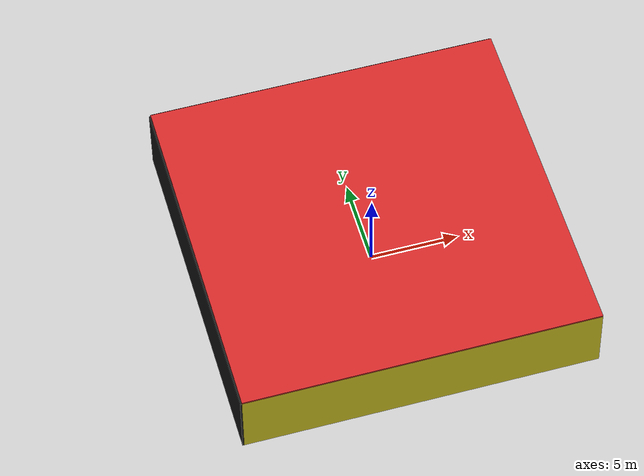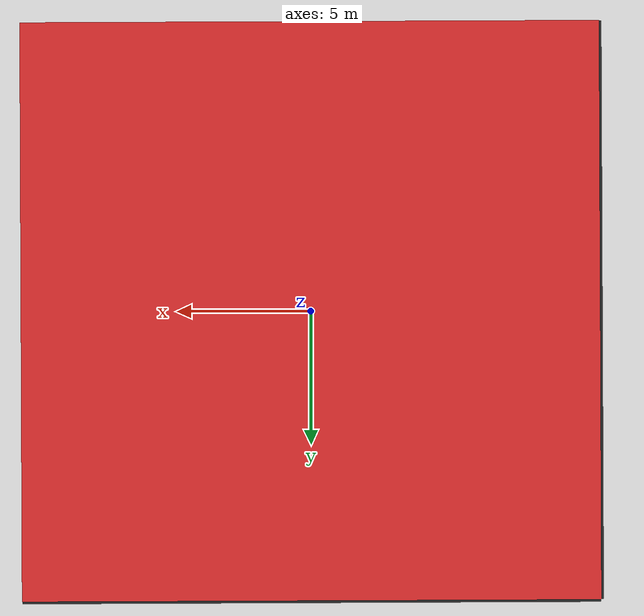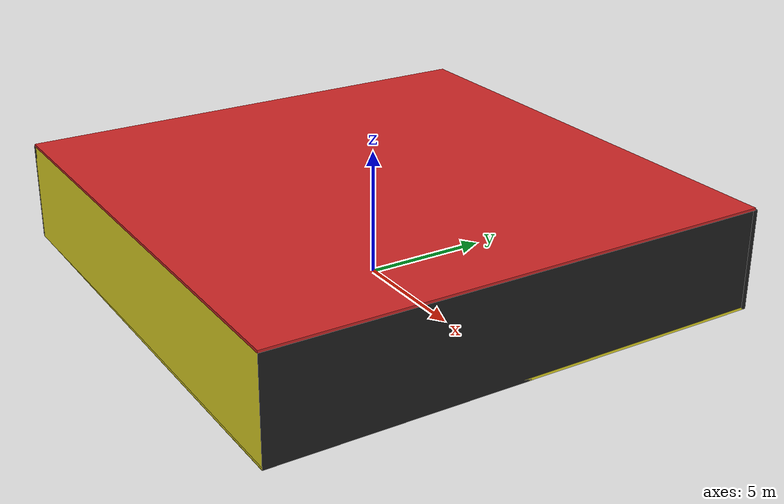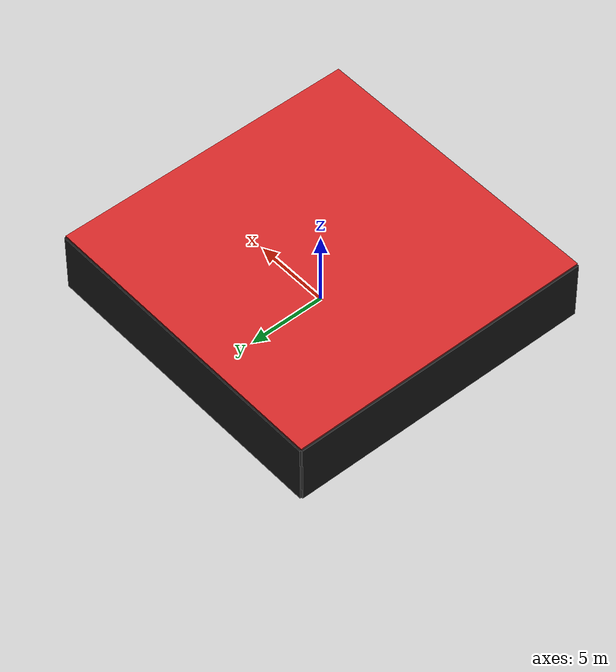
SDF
<sdf version="1.4">
 <world name="default">
  <physics type="ode">
   <max_step_size>0.001</max_step_size>
   <real_time_factor>1</real_time_factor>
   <real_time_update_rate>1000</real_time_update_rate>
   <gravity>0 0 -9.8</gravity>
  </physics>
  <scene><ambient>0.4 0.4 0.4 1</ambient><background>0.7 0.7 0.7 1</background><shadows>1</shadows></scene>
  <model name="Surrounding">
   <static>1</static>
   <link name="Ceiling">
    <collision name="Ceiling_Collision"><geometry><box><size>20 20 0.1</size></box></geometry></collision>
    <visual name="Ceiling_Visual">
     <geometry><box><size>20 20 0.1</size></box></geometry>
     <material>
      <script><uri>file://media/materials/scripts/gazebo.material</uri><name>Gazebo/RedBright</name></script>
     </material>
    </visual>
    <pose>0 0 4.05 0 0 0</pose>
   </link>
   <link name="Wall_South">
    <collision name="Wall_South_Collision">
     <geometry><box><size>20 0 4</size></box></geometry>
     <pose>0 0 2 0 -0 0</pose>
    </collision>
    <visual name="Wall_South_Visual">
     <pose>0 0 2 0 -0 0</pose>
     <geometry><box><size>20 0 4</size></box></geometry>
     <material>
      <script><uri>file://media/materials/scripts/gazebo.material</uri><name>Gazebo/Yellow</name></script>
     </material>
    </visual>
    <velocity_decay><linear>0</linear><angular>0</angular></velocity_decay>
    <pose>0 -10 0 0 -0 0</pose>
   </link>
   <link name="Wall_East">
    <collision name="Wall_21_Collision">
     <geometry><box><size>20 0 4</size></box></geometry>
     <pose>0 0 2 0 -0 0</pose>
    </collision>
    <visual name="Wall_21_Visual">
     <pose>0 0 2 0 -0 0</pose>
     <geometry><box><size>20 0 4</size></box></geometry>
     <material>
      <script><uri>file://media/materials/scripts/gazebo.material</uri><name>Gazebo/Black</name></script>
     </material>
    </visual>
    <velocity_decay><linear>0</linear><angular>0</angular></velocity_decay>
    <pose>10 0 0 0 -0 1.5708</pose>
   </link>
   <link name="Wall_North">
    <collision name="Wall_22_Collision">
     <geometry><box><size>20 0.2 4</size></box></geometry>
     <pose>0 0 2 0 -0 0</pose>
    </collision>
    <visual name="Wall_22_Visual">
     <pose>0 0 2 0 -0 0</pose>
     <geometry><box><size>20 0.2 4</size></box></geometry>
     <material>
      <script><uri>file://media/materials/scripts/gazebo.material</uri><name>Gazebo/FlatBlack</name></script>
     </material>
    </visual>
    <velocity_decay><linear>0</linear><angular>0</angular></velocity_decay>
    <pose>0 10 0 0 -0 0</pose>
   </link>
   <link name="Wall_West">
    <collision name="Wall_23_Collision">
     <geometry><box><size>20 0.2 4</size></box></geometry>
     <pose>0 0 2 0 -0 0</pose>
    </collision>
    <visual name="Wall_23_Visual">
     <pose>0 0 2 0 -0 0</pose>
     <geometry><box><size>20 0.2 4</size></box></geometry>
     <material>
      <script><uri>file://media/materials/scripts/gazebo.material</uri><name>Gazebo/Black</name></script>
     </material>
    </visual>
    <velocity_decay><linear>0</linear><angular>0</angular></velocity_decay>
    <pose>-10 0 0 0 0 -1.5708</pose>
   </link>
   <link name="Ground_link">
    <collision name="collision">
     <pose>0 0 .05 0 -0 0</pose>
     <geometry><box><size>20 20 0.1</size></box></geometry>
    </collision>
    <visual name="visual">
     <pose>0 0 .05 0 -0 0</pose>
     <geometry><box><size>20 20 0.1</size></box></geometry>
     <material>
      <script><uri>file://media/materials/scripts/gazebo.material</uri><name>Gazebo/Yellow</name></script>
     </material>
    </visual>
   </link>
   <static>1</static>
  </model>
  <spherical_coordinates>
   <surface_model>EARTH_WGS84</surface_model>
   <latitude_deg>0</latitude_deg>
   <longitude_deg>0</longitude_deg>
   <elevation>0</elevation>
   <heading_deg>0</heading_deg>
  </spherical_coordinates>
  <light name="lightball_0" type="diffuse">
   <diffuse>0.8 0.8 0.8 1</diffuse>
   <specular>0.2 0.2 0.2 1</specular>
   <attenuation>
    <range>100</range>
    <constant>0.7</constant>
    <linear>0.01</linear>
    <quadratic>0.001</quadratic>
   </attenuation>
   <direction>-0.5 0.1 -0.9</direction>
   <pose>1.01677393817 -3.67400231333 0.966563235538 0 0 0</pose>
  </light>
  <light name="lightball_1" type="diffuse">
   <diffuse>0.8 0.8 0.8 1</diffuse>
   <specular>0.2 0.2 0.2 1</specular>
   <attenuation>
    <range>100</range>
    <constant>0.7</constant>
    <linear>0.01</linear>
    <quadratic>0.001</quadratic>
   </attenuation>
   <direction>-0.5 0.1 -0.9</direction>
   <pose>5.03482294433 -5.28095062366 2.32448323927 0 0 0</pose>
  </light>
  <light name="lightball_2" type="diffuse">
   <diffuse>0.8 0.8 0.8 1</diffuse>
   <specular>0.2 0.2 0.2 1</specular>
   <attenuation>
    <range>100</range>
    <constant>0.7</constant>
    <linear>0.01</linear>
    <quadratic>0.001</quadratic>
   </attenuation>
   <direction>-0.5 0.1 -0.9</direction>
   <pose>-6.86778840813 8.20407037142 2.27780989062 0 0 0</pose>
  </light>
  <light name="lightball_3" type="diffuse">
   <diffuse>0.8 0.8 0.8 1</diffuse>
   <specular>0.2 0.2 0.2 1</specular>
   <attenuation>
    <range>100</range>
    <constant>0.7</constant>
    <linear>0.01</linear>
    <quadratic>0.001</quadratic>
   </attenuation>
   <direction>-0.5 0.1 -0.9</direction>
   <pose>4.32991357351 -6.79291054489 2.94652713273 0 0 0</pose>
  </light>
  <light name="lightball_4" type="diffuse">
   <diffuse>0.8 0.8 0.8 1</diffuse>
   <specular>0.2 0.2 0.2 1</specular>
   <attenuation>
    <range>100</range>
    <constant>0.7</constant>
    <linear>0.01</linear>
    <quadratic>0.001</quadratic>
   </attenuation>
   <direction>-0.5 0.1 -0.9</direction>
   <pose>9.38405797979 -0.181685380242 0.916686547769 0 0 0</pose>
  </light>
  <light name="lightball_5" type="diffuse">
   <diffuse>0.8 0.8 0.8 1</diffuse>
   <specular>0.2 0.2 0.2 1</specular>
   <attenuation>
    <range>100</range>
    <constant>0.7</constant>
    <linear>0.01</linear>
    <quadratic>0.001</quadratic>
   </attenuation>
   <direction>-0.5 0.1 -0.9</direction>
   <pose>-4.72403720839 4.98183603052 3.84375951092 0 0 0</pose>
  </light>
  <light name="lightball_6" type="diffuse">
   <diffuse>0.8 0.8 0.8 1</diffuse>
   <specular>0.2 0.2 0.2 1</specular>
   <attenuation>
    <range>100</range>
    <constant>0.7</constant>
    <linear>0.01</linear>
    <quadratic>0.001</quadratic>
   </attenuation>
   <direction>-0.5 0.1 -0.9</direction>
   <pose>3.97724368767 -7.8562949018 3.33719339256 0 0 0</pose>
  </light>
  <light name="lightball_7" type="diffuse">
   <diffuse>0.8 0.8 0.8 1</diffuse>
   <specular>0.2 0.2 0.2 1</specular>
   <attenuation>
    <range>100</range>
    <constant>0.7</constant>
    <linear>0.01</linear>
    <quadratic>0.001</quadratic>
   </attenuation>
   <direction>-0.5 0.1 -0.9</direction>
   <pose>3.84846723182 9.00798738858 3.79778886358 0 0 0</pose>
  </light>
  <light name="lightball_8" type="diffuse">
   <diffuse>0.8 0.8 0.8 1</diffuse>
   <specular>0.2 0.2 0.2 1</specular>
   <attenuation>
    <range>100</range>
    <constant>0.7</constant>
    <linear>0.01</linear>
    <quadratic>0.001</quadratic>
   </attenuation>
   <direction>-0.5 0.1 -0.9</direction>
   <pose>-7.56818378934 -8.87352429367 3.62423037432 0 0 0</pose>
  </light>
  <light name="lightball_9" type="diffuse">
   <diffuse>0.8 0.8 0.8 1</diffuse>
   <specular>0.2 0.2 0.2 1</specular>
   <attenuation>
    <range>100</range>
    <constant>0.7</constant>
    <linear>0.01</linear>
    <quadratic>0.001</quadratic>
   </attenuation>
   <direction>-0.5 0.1 -0.9</direction>
   <pose>-2.05416240766 -4.27063877695 1.80414233689 0 0 0</pose>
  </light>
  <light name="lightball_10" type="diffuse">
   <diffuse>0.8 0.8 0.8 1</diffuse>
   <specular>0.2 0.2 0.2 1</specular>
   <attenuation>
    <range>100</range>
    <constant>0.7</constant>
    <linear>0.01</linear>
    <quadratic>0.001</quadratic>
   </attenuation>
   <direction>-0.5 0.1 -0.9</direction>
   <pose>5.19653545443 -5.29850083202 3.07111478725 0 0 0</pose>
  </light>
  <light name="lightball_11" type="diffuse">
   <diffuse>0.8 0.8 0.8 1</diffuse>
   <specular>0.2 0.2 0.2 1</specular>
   <attenuation>
    <range>100</range>
    <constant>0.7</constant>
    <linear>0.01</linear>
    <quadratic>0.001</quadratic>
   </attenuation>
   <direction>-0.5 0.1 -0.9</direction>
   <pose>-5.28375511084 8.35823516446 2.17735060924 0 0 0</pose>
  </light>
  <light name="lightball_12" type="diffuse">
   <diffuse>0.8 0.8 0.8 1</diffuse>
   <specular>0.2 0.2 0.2 1</specular>
   <attenuation>
    <range>100</range>
    <constant>0.7</constant>
    <linear>0.01</linear>
    <quadratic>0.001</quadratic>
   </attenuation>
   <direction>-0.5 0.1 -0.9</direction>
   <pose>7.95774376028 -9.63300813809 1.6057008976 0 0 0</pose>
  </light>
  <light name="lightball_13" type="diffuse">
   <diffuse>0.8 0.8 0.8 1</diffuse>
   <specular>0.2 0.2 0.2 1</specular>
   <attenuation>
    <range>100</range>
    <constant>0.7</constant>
    <linear>0.01</linear>
    <quadratic>0.001</quadratic>
   </attenuation>
   <direction>-0.5 0.1 -0.9</direction>
   <pose>2.76631993816 -2.86095583072 3.13323970887 0 0 0</pose>
  </light>
  <include>
   <uri>model://robocup_3Dsim_goal</uri>
   <pose>-7.71156470065 -5.0444147253 0 0 0 1.38195122641</pose>
  </include>
  <include>
   <uri>model://textured_shapes</uri>
   <pose>-8.01925756646 5.09863354533 0 0 0 0.356378609424</pose>
  </include>
  <include>
   <uri>model://textured_shapes</uri>
   <pose>-1.83448795192 7.31650646575 0 0 0 1.96422866761</pose>
  </include>
  <include>
   <uri>model://construction_cone</uri>
   <pose>7.33928052804 -1.69466029689 0 0 0 1.01642956976</pose>
  </include>
  <include>
   <uri>model://robocup_3Dsim_goal</uri>
   <pose>7.02234096866 7.13849438538 0 0 0 0.0783359268398</pose>
  </include>
 </world>
</sdf>

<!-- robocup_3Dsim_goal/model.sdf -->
<sdf version="1.5">
  <model name="robocup_3d_goal">
    <static>true</static>
    <link name="left_post">
      <pose>0 1.05 0.45 0 0 0</pose>
      <collision name="collision">
        <geometry>
          <cylinder>
            <radius>0.05</radius>
            <length>0.9</length>
          </cylinder>
        </geometry>
      </collision>
      <visual name="visual">
        <geometry>
          <cylinder>
            <radius>0.05</radius>
            <length>0.9</length>
          </cylinder>
        </geometry>
        <material>
          <script>
            <uri>file://media/materials/scripts/gazebo.material</uri>
            <name>Gazebo/ZincYellow</name>
          </script>
        </material>
      </visual>
    </link>
    <link name="left_support_horiz_lower">
      <pose>0.30 1.05 0.01 0 0 0</pose>
      <collision name="collision">
        <geometry>
          <box>
            <size>0.50 0.02 0.02</size>
          </box>
        </geometry>
      </collision>
      <visual name="visual">
        <geometry>
          <box>
            <size>0.50 0.02 0.02</size>
          </box>
        </geometry>
        <material>
          <script>
            <uri>file://media/materials/scripts/gazebo.material</uri>
            <name>Gazebo/White</name>
          </script>
        </material>
      </visual>
    </link>
    <link name="left_support_horiz_upper">
      <pose>0.30 1.05 0.79 0 0 0</pose>
      <collision name="collision">
        <geometry>
          <box>
            <size>0.50 0.02 0.02</size>
          </box>
        </geometry>
      </collision>
      <visual name="visual">
        <geometry>
          <box>
            <size>0.50 0.02 0.02</size>
          </box>
        </geometry>
        <material>
          <script>
            <uri>file://media/materials/scripts/gazebo.material</uri>
            <name>Gazebo/White</name>
          </script>
        </material>
      </visual>
    </link>
    <link name="left_support_vertical">
      <pose>0.56 1.05 0.4 0 1.5708 0</pose>
      <collision name="collision">
        <geometry>
          <box>
            <size>0.80 0.02 0.02</size>
          </box>
        </geometry>
      </collision>
      <visual name="visual">
        <geometry>
          <box>
            <size>0.80 0.02 0.02</size>
          </box>
        </geometry>
        <material>
          <script>
            <uri>file://media/materials/scripts/gazebo.material</uri>
            <name>Gazebo/White</name>
          </script>
        </material>
      </visual>
    </link>
    <link name="right_support_horiz_lower">
      <pose>0.30 -1.05 0.01 0 0 0</pose>
      <collision name="collision">
        <geometry>
          <box>
            <size>0.50 0.02 0.02</size>
          </box>
        </geometry>
      </collision>
      <visual name="visual">
        <geometry>
          <box>
            <size>0.50 0.02 0.02</size>
          </box>
        </geometry>
        <material>
          <script>
            <uri>file://media/materials/scripts/gazebo.material</uri>
            <name>Gazebo/White</name>
          </script>
        </material>
      </visual>
    </link>
    <link name="right_support_horiz_upper">
      <pose>0.30 -1.05 0.79 0 0 0</pose>
      <collision name="collision">
        <geometry>
          <box>
            <size>0.50 0.02 0.02</size>
          </box>
        </geometry>
      </collision>
      <visual name="visual">
        <geometry>
          <box>
            <size>0.50 0.02 0.02</size>
          </box>
        </geometry>
        <material>
          <script>
            <uri>file://media/materials/scripts/gazebo.material</uri>
            <name>Gazebo/White</name>
          </script>
        </material>
      </visual>
    </link>
    <link name="right_support_vertical">
      <pose>0.56 -1.05 0.4 0 1.5708 0</pose>
      <collision name="collision">
        <geometry>
          <box>
            <size>0.80 0.02 0.02</size>
          </box>
        </geometry>
      </collision>
      <visual name="visual">
        <geometry>
          <box>
            <size>0.80 0.02 0.02</size>
          </box>
        </geometry>
        <material>
          <script>
            <uri>file://media/materials/scripts/gazebo.material</uri>
            <name>Gazebo/White</name>
          </script>
        </material>
      </visual>
    </link>
    <link name="center_support_horiz_lower">
      <pose>0.56 0 0.01 0 1.5708 0</pose>
      <collision name="collision">
        <geometry>
          <box>
            <size>0.02 2.08 0.02</size>
          </box>
        </geometry>
      </collision>
      <visual name="visual">
        <geometry>
          <box>
            <size>0.02 2.08 0.02</size>
          </box>
        </geometry>
        <material>
          <script>
            <uri>file://media/materials/scripts/gazebo.material</uri>
            <name>Gazebo/White</name>
          </script>
        </material>
      </visual>
    </link>
    <link name="center_support_horiz_upper">
      <pose>0.56 0 0.79 0 1.5708 0</pose>
      <collision name="collision">
        <geometry>
          <box>
            <size>0.02 2.08 0.02</size>
          </box>
        </geometry>
      </collision>
      <visual name="visual">
        <geometry>
          <box>
            <size>0.02 2.08 0.02</size>
          </box>
        </geometry>
        <material>
          <script>
            <uri>file://media/materials/scripts/gazebo.material</uri>
            <name>Gazebo/White</name>
          </script>
        </material>
      </visual>
    </link>
    <link name="right_post">
      <pose>0 -1.05 0.45 0 0 0</pose>
      <collision name="collision">
        <geometry>
          <cylinder>
            <radius>0.05</radius>
            <length>0.9</length>
          </cylinder>
        </geometry>
      </collision>
      <visual name="visual">
        <geometry>
          <cylinder>
            <radius>0.05</radius>
            <length>0.9</length>
          </cylinder>
        </geometry>
        <material>
          <script>
            <uri>file://media/materials/scripts/gazebo.material</uri>
            <name>Gazebo/ZincYellow</name>
          </script>
        </material>
      </visual>
    </link>
    <link name="crossbar">
      <pose>0 0 0.85 1.57 1.57 0</pose>
      <collision name="collision">
        <geometry>
          <cylinder>
            <radius>0.05</radius>
            <length>2.0</length>
          </cylinder>
        </geometry>
      </collision>
      <visual name="visual">
        <geometry>
          <cylinder>
            <radius>0.05</radius>
            <length>2.0</length>
          </cylinder>
        </geometry>
        <material>
          <script>
            <uri>file://media/materials/scripts/gazebo.material</uri>
            <name>Gazebo/ZincYellow</name>
          </script>
        </material>
      </visual>
    </link>
    <link name="center_net">
      <pose>0.56 0 0.40 0 0 0</pose>
      <collision name="collision">
        <geometry>
          <box>
            <size>0.01 2.1 0.80</size>
          </box>
        </geometry>
      </collision>
      <visual name="visual">
        <geometry>
          <box>
            <size>0.01 2.1 0.80</size>
          </box>
        </geometry>
        <material>
          <script>
            <uri>model://../model_source/models/robocup09_spl_field/materials/scripts/</uri>
            <uri>model://../model_source/models/robocup09_spl_field/materials/textures/</uri>
            <name>RoboCup/Net</name>
          </script>
        </material>
      </visual>
    </link>
    <link name="left_net">
      <pose>0.30 1.05 0.40 0 0 0</pose>
      <collision name="collision">
        <geometry>
          <box>
            <size>0.50 0.01 0.76</size>
          </box>
        </geometry>
      </collision>
      <visual name="visual">
        <geometry>
          <box>
            <size>0.50 0.01 0.76</size>
          </box>
        </geometry>
        <material>
          <script>
            <uri>model://../model_source/models/robocup09_spl_field/materials/scripts/</uri>
            <uri>model://../model_source/models/robocup09_spl_field/materials/textures/</uri>
            <name>RoboCup/Net</name>
          </script>
        </material>
      </visual>
    </link>
    <link name="right_net">
      <pose>0.30 -1.05 0.40 0 0 0</pose>
      <collision name="collision">
        <geometry>
          <box>
            <size>0.50 0.01 0.76</size>
          </box>
        </geometry>
      </collision>
      <visual name="visual">
        <geometry>
          <box>
            <size>0.50 0.01 0.76</size>
          </box>
        </geometry>
        <material>
          <script>
            <uri>model://../model_source/models/robocup09_spl_field/materials/scripts/</uri>
            <uri>model://../model_source/models/robocup09_spl_field/materials/textures/</uri>
            <name>RoboCup/Net</name>
          </script>
        </material>
      </visual>
    </link>
  </model>
</sdf>

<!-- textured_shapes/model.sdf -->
<sdf version="1.6">
  <model name="textured_shapes">
    <pose>0 0 0.5 0 0 0</pose>
    <link name="box">
      <pose>0 -1.5 0 0 0 0</pose>
      <collision name="collision">
        <geometry>
          <box>
            <size>1 1 1</size>
          </box>
        </geometry>
      </collision>
      <visual name="visual">
        <geometry>
          <box>
            <size>1 1 1</size>
          </box>
        </geometry>
        <material>
          <script>
            <uri>model://../model_source/models/textured_shapes/materials/scripts</uri>
            <uri>model://../model_source/models/textured_shapes/materials/textures</uri>
            <name>TexturedShape/Squares</name>
          </script>
        </material>
      </visual>
    </link>
    <link name="sphere">
      <collision name="collision">
        <geometry>
          <sphere>
            <radius>0.5</radius>
          </sphere>
        </geometry>
      </collision>
      <visual name="visual">
        <geometry>
          <sphere>
            <radius>0.5</radius>
          </sphere>
        </geometry>
        <material>
          <script>
            <uri>model://../model_source/models/textured_shapes/materials/scripts</uri>
            <uri>model://../model_source/models/textured_shapes/materials/textures</uri>
            <name>TexturedShape/Squares</name>
          </script>
        </material>
      </visual>
    </link>
    <link name="cylinder">
      <pose>0 1.5 0 0 0 0</pose>
      <collision name="collision">
        <geometry>
          <cylinder>
            <radius>0.5</radius>
            <length>1</length>
          </cylinder>
        </geometry>
      </collision>
      <visual name="visual">
        <geometry>
          <cylinder>
            <radius>0.5</radius>
            <length>1</length>
          </cylinder>
        </geometry>
        <material>
          <script>
            <uri>model://../model_source/models/textured_shapes/materials/scripts</uri>
            <uri>model://../model_source/models/textured_shapes/materials/textures</uri>
            <name>TexturedShape/Squares</name>
          </script>
        </material>
      </visual>
    </link>
  </model>
</sdf>

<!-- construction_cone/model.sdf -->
<sdf version="1.5">
  <model name="Construction Cone">
    <link name="link">
      <collision name="collision">
        <geometry>
          <mesh>
            <scale>10 10 10</scale>
            <uri>file://isr-testbed/construction_cone/meshes/construction_cone.dae</uri>
          </mesh>
        </geometry>
      </collision>
      <visual name="visual">
        <geometry>
          <mesh>
            <scale>10 10 10</scale>
            <uri>file://isr-testbed/construction_cone/meshes/construction_cone.dae</uri>
          </mesh>
        </geometry>
      </visual>
    </link>
  </model>
</sdf>
